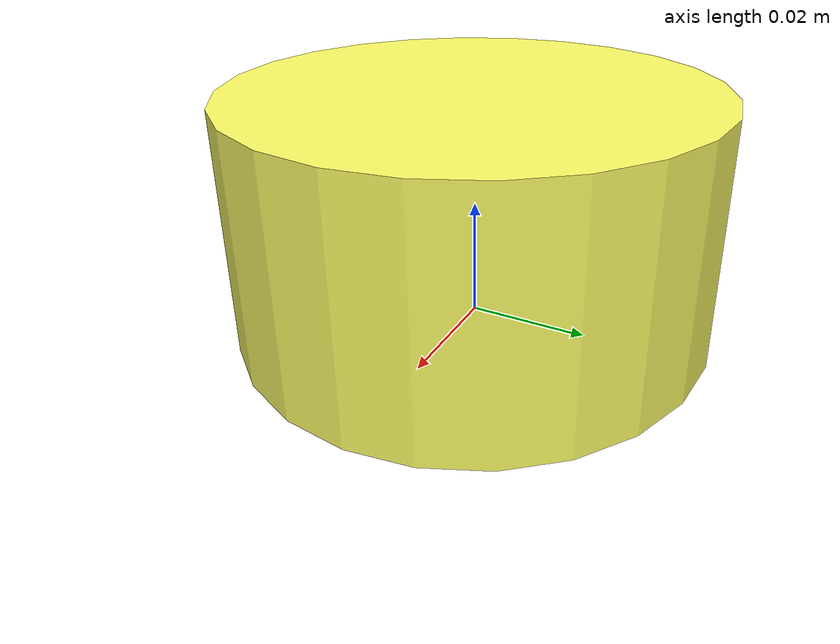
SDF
<?xml version='1.0'?>
<sdf version='1.6'>
  <model name='simcylinder'>
    <link name='link'>
      <pose>0 0 0.02 0 0 0</pose>
      <inertial>
        <mass>0.7</mass>
        <inertia>
          <ixx>3e-4</ixx>
          <ixy>0</ixy>
          <ixz>0</ixz>
          <iyy>3e-4</iyy>
          <iyz>0</iyz>

          <izz>5.6e-4</izz>
        </inertia>
      </inertial>
      <self_collide>0</self_collide>
      <enable_wind>0</enable_wind>
      <kinematic>0</kinematic>
      <gravity>1</gravity>
      <visual name='visual'>
        <geometry>
          <cylinder>
            <radius>0.04</radius>
            <length>0.04</length>
          </cylinder>
        </geometry>
        <material>
          <script>
            <name>Gazebo/Grey</name>
            <uri>file://media/materials/scripts/gazebo.material</uri>
          </script>
          <shader type='pixel'>
            <normal_map>__default__</normal_map>
          </shader>
          <ambient>1.0 1.0 0.4 1</ambient>
          <diffuse>1.0 1.0 0.4 1</diffuse>
          <specular>0.01 0.01 0.01 1</specular>
          <emissive>0 0 0 1</emissive>
        </material>
        <transparency>0</transparency>
        <cast_shadows>1</cast_shadows>
      </visual>
      <collision name='collision'>
        <laser_retro>0</laser_retro>
        <max_contacts>10</max_contacts>
        <geometry>
          <cylinder>
            <radius>0.04</radius>
            <length>0.04</length>
          </cylinder>
        </geometry>
        <surface>
          <friction>
            <ode>
              <mu>0.4</mu>
              <mu2>0.4</mu2>
              <fdir1>0 0 0</fdir1>
              <slip1>0</slip1>
              <slip2>0</slip2>
            </ode>
            <torsional>
              <coefficient>1</coefficient>
              <patch_radius>0</patch_radius>
              <surface_radius>0</surface_radius>
              <use_patch_radius>1</use_patch_radius>
              <ode>
                <slip>0</slip>
              </ode>
            </torsional>
          </friction>
          <bounce>
            <restitution_coefficient>0</restitution_coefficient>
            <threshold>1e+06</threshold>
          </bounce>
          <contact>
            <collide_without_contact>0</collide_without_contact>
            <collide_without_contact_bitmask>1</collide_without_contact_bitmask>
            <collide_bitmask>1</collide_bitmask>
            <ode>
              <soft_cfm>0</soft_cfm>
              <soft_erp>0.2</soft_erp>
              <kp>1e+13</kp>
              <kd>0</kd>
              <max_vel>0.01</max_vel>
              <min_depth>0</min_depth>
            </ode>
            <bullet>
              <split_impulse>1</split_impulse>
              <split_impulse_penetration_threshold>-0.01</split_impulse_penetration_threshold>
              <soft_cfm>0</soft_cfm>
              <soft_erp>0.2</soft_erp>
              <kp>1e+13</kp>
              <kd>0</kd>
            </bullet>
          </contact>
        </surface>
      </collision>
    </link>
    <plugin name="simcylinder" filename="libsimcylinder.so"/>
    <static>0</static>
    <allow_auto_disable>0</allow_auto_disable>
  </model>
</sdf>
